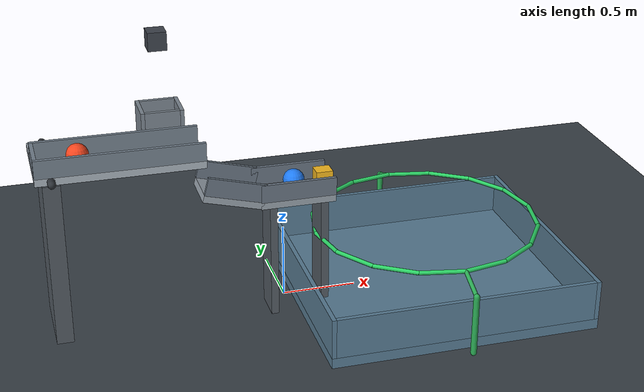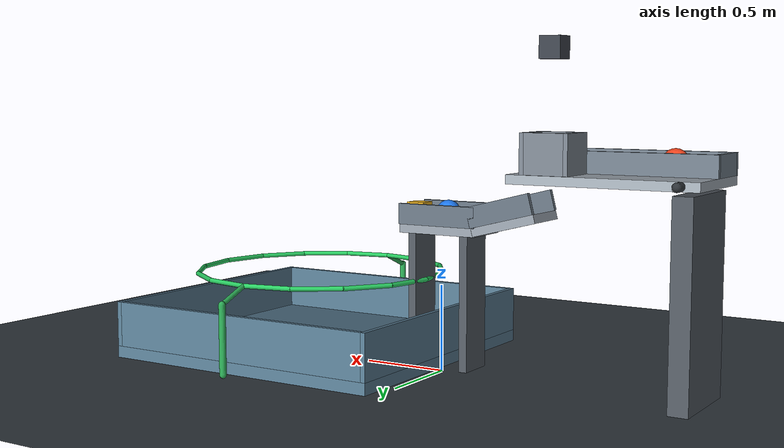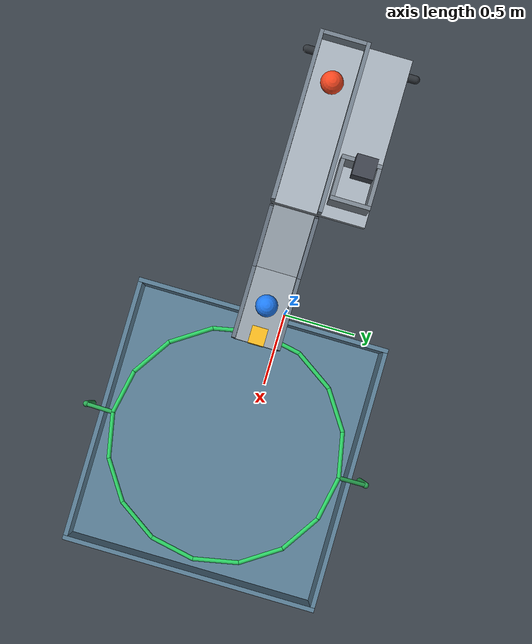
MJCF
<mujoco model="weight_tray_ball_relay">
  <compiler angle="radian" autolimits="true"/>
  <option timestep="0.002" gravity="0 0 -9.81" integrator="implicitfast" cone="elliptic" iterations="100"/>
  <size njmax="2000" nconmax="400"/>
  <visual>
    <global azimuth="125" elevation="-24"/>
    <headlight ambient="0.35 0.35 0.35" diffuse="0.7 0.7 0.7"/>
  </visual>

  <worldbody>
    <light name="main_light" pos="-1 -2 5" dir="0.2 0.3 -1"/>
    <camera name="overview" pos="2.8 -4.4 3.0" xyaxes="0.82 0.57 0 -0.27 0.39 0.88"/>
    <geom name="floor" type="plane" size="5 5 0.1" rgba="0.22 0.25 0.28 1" friction="0.8 0.02 0.01" condim="6"/>

    <body name="tray_stand" pos="-1.5 0 0">
      <geom name="tray_stand_post" type="box" pos="0 0 0.55" size="0.055 0.25 0.55" rgba="0.32 0.35 0.38 1" contype="0" conaffinity="0"/>
      <geom name="tray_stand_axle" type="capsule" fromto="0 -0.34 1.15 0 0.34 1.15" size="0.025" rgba="0.18 0.20 0.22 1" contype="0" conaffinity="0"/>
    </body>

    <!-- Positive hinge rotation lowers the outlet. The loaded tray remains at its 0.25-radian lower stop. -->
    <body name="tray" pos="-1.5 0 1.15">
      <joint name="tray_hinge" type="hinge" axis="0 1 0" range="0 0.25" stiffness="4" springref="-0.75" damping="0.35" armature="0.01" solreflimit="0.006 1" solimplimit="0.95 0.99 0.001"/>
      <geom name="tray_bottom" type="box" pos="0.425 0 0" size="0.525 0.29 0.025" mass="0.18" rgba="0.65 0.69 0.73 1" friction="0.5 0.005 0.001" condim="6"/>
      <geom name="tray_ball_outer_rail" type="box" pos="0.425 -0.2825 0.085" size="0.525 0.0125 0.06" mass="0.015" rgba="0.45 0.50 0.55 1" friction="0.3 0.005 0.001" condim="6"/>
      <geom name="tray_lane_divider" type="box" pos="0.425 0.005 0.085" size="0.525 0.0125 0.06" mass="0.015" rgba="0.45 0.50 0.55 1" friction="0.3 0.005 0.001" condim="6"/>
      <geom name="tray_back_rail" type="box" pos="-0.0875 -0.14 0.085" size="0.0125 0.1325 0.06" mass="0.01" rgba="0.45 0.50 0.55 1"/>
      <geom name="tray_weight_pocket_left" type="box" pos="0.615 0.155 0.135" size="0.0125 0.1225 0.11" mass="0.01" rgba="0.48 0.52 0.56 1" friction="0.6 0.01 0.002"/>
      <geom name="tray_weight_pocket_right" type="box" pos="0.865 0.155 0.135" size="0.0125 0.1225 0.11" mass="0.01" rgba="0.48 0.52 0.56 1" friction="0.6 0.01 0.002"/>
      <geom name="tray_weight_pocket_front" type="box" pos="0.74 0.045 0.135" size="0.1125 0.0125 0.11" mass="0.01" rgba="0.48 0.52 0.56 1" friction="0.6 0.01 0.002"/>
      <geom name="tray_weight_pocket_back" type="box" pos="0.74 0.265 0.135" size="0.1125 0.0125 0.11" mass="0.01" rgba="0.48 0.52 0.56 1" friction="0.6 0.01 0.002"/>
    </body>

    <!-- The weight's bottom starts exactly 0.600 m above the level tray surface. -->
    <body name="weight" pos="-0.76 0.155 1.835">
      <freejoint/>
      <geom name="weight_cube" type="box" size="0.06 0.06 0.06" mass="1.5" rgba="0.24 0.26 0.30 1" friction="0.7 0.02 0.005" condim="6" solref="0.012 1" solimp="0.95 0.99 0.001"/>
    </body>

    <body name="ball1" pos="-1.32 -0.14 1.245">
      <freejoint/>
      <geom name="ball1_sphere" type="sphere" size="0.07" mass="0.4" rgba="0.95 0.27 0.12 1" friction="0.5 0.015 0.004" condim="6" solref="0.008 1" solimp="0.95 0.99 0.001"/>
    </body>

    <body name="ball2" pos="0.04 -0.14 0.91">
      <freejoint/>
      <geom name="ball2_sphere" type="sphere" size="0.07" mass="0.3" rgba="0.12 0.48 0.95 1" friction="0.5 0.015 0.005" condim="6" solref="0.008 1" solimp="0.95 0.99 0.001"/>
    </body>

    <body name="block" pos="0.235 -0.14 0.90">
      <freejoint/>
      <geom name="block_payload" type="box" size="0.055 0.05 0.06" mass="0.09" rgba="0.96 0.72 0.12 1" friction="0.16 0.008 0.002" condim="6" solref="0.01 1" solimp="0.95 0.99 0.001"/>
    </body>

    <!-- This ramp meets the tray when the tray reaches its lower stop. -->
    <body name="ramp" pos="-0.386 -0.14 0.86552" euler="0 0.25 0">
      <geom name="ramp_surface" type="box" size="0.20 0.145 0.025" rgba="0.58 0.62 0.66 1" friction="0.35 0.005 0.001" condim="6"/>
      <geom name="ramp_left_rail" type="box" pos="0 -0.1425 0.085" size="0.20 0.0125 0.06" rgba="0.40 0.45 0.50 1" friction="0.3 0.005 0.001" condim="6"/>
      <geom name="ramp_right_rail" type="box" pos="0 0.1425 0.085" size="0.20 0.0125 0.06" rgba="0.40 0.45 0.50 1" friction="0.3 0.005 0.001" condim="6"/>
    </body>

    <body name="launch_shelf" pos="0 0 0">
      <geom name="launch_shelf_surface" type="box" pos="0.0375 -0.14 0.815" size="0.2475 0.145 0.025" rgba="0.58 0.62 0.66 1" friction="0.12 0.005 0.001" condim="6"/>
      <geom name="launch_shelf_left_rail" type="box" pos="0.0375 -0.2825 0.90" size="0.2475 0.0125 0.06" rgba="0.40 0.45 0.50 1" friction="0.3 0.005 0.001" condim="6"/>
      <geom name="launch_shelf_right_rail" type="box" pos="0.0375 0.0025 0.90" size="0.2475 0.0125 0.06" rgba="0.40 0.45 0.50 1" friction="0.3 0.005 0.001" condim="6"/>
      <geom name="launch_shelf_support_left" type="box" pos="-0.12 -0.14 0.395" size="0.025 0.11 0.395" rgba="0.32 0.35 0.38 1"/>
      <geom name="launch_shelf_support_right" type="box" pos="0.22 -0.14 0.395" size="0.025 0.11 0.395" rgba="0.32 0.35 0.38 1"/>
    </body>

    <!-- Horizontal drop hoop: a closed ring made entirely from capsule primitives. -->
    <body name="hoop" pos="0.95 -0.14 0.50">
      <geom name="hoop_segment_01" type="capsule" fromto="0.76 0 0 0.702148 0.290839 0" size="0.014" rgba="0.16 0.80 0.38 1"/>
      <geom name="hoop_segment_02" type="capsule" fromto="0.702148 0.290839 0 0.537401 0.537401 0" size="0.014" rgba="0.16 0.80 0.38 1"/>
      <geom name="hoop_segment_03" type="capsule" fromto="0.537401 0.537401 0 0.290839 0.702148 0" size="0.014" rgba="0.16 0.80 0.38 1"/>
      <geom name="hoop_segment_04" type="capsule" fromto="0.290839 0.702148 0 0 0.76 0" size="0.014" rgba="0.16 0.80 0.38 1"/>
      <geom name="hoop_segment_05" type="capsule" fromto="0 0.76 0 -0.290839 0.702148 0" size="0.014" rgba="0.16 0.80 0.38 1"/>
      <geom name="hoop_segment_06" type="capsule" fromto="-0.290839 0.702148 0 -0.537401 0.537401 0" size="0.014" rgba="0.16 0.80 0.38 1"/>
      <geom name="hoop_segment_07" type="capsule" fromto="-0.537401 0.537401 0 -0.702148 0.290839 0" size="0.014" rgba="0.16 0.80 0.38 1"/>
      <geom name="hoop_segment_08" type="capsule" fromto="-0.702148 0.290839 0 -0.76 0 0" size="0.014" rgba="0.16 0.80 0.38 1"/>
      <geom name="hoop_segment_09" type="capsule" fromto="-0.76 0 0 -0.702148 -0.290839 0" size="0.014" rgba="0.16 0.80 0.38 1"/>
      <geom name="hoop_segment_10" type="capsule" fromto="-0.702148 -0.290839 0 -0.537401 -0.537401 0" size="0.014" rgba="0.16 0.80 0.38 1"/>
      <geom name="hoop_segment_11" type="capsule" fromto="-0.537401 -0.537401 0 -0.290839 -0.702148 0" size="0.014" rgba="0.16 0.80 0.38 1"/>
      <geom name="hoop_segment_12" type="capsule" fromto="-0.290839 -0.702148 0 0 -0.76 0" size="0.014" rgba="0.16 0.80 0.38 1"/>
      <geom name="hoop_segment_13" type="capsule" fromto="0 -0.76 0 0.290839 -0.702148 0" size="0.014" rgba="0.16 0.80 0.38 1"/>
      <geom name="hoop_segment_14" type="capsule" fromto="0.290839 -0.702148 0 0.537401 -0.537401 0" size="0.014" rgba="0.16 0.80 0.38 1"/>
      <geom name="hoop_segment_15" type="capsule" fromto="0.537401 -0.537401 0 0.702148 -0.290839 0" size="0.014" rgba="0.16 0.80 0.38 1"/>
      <geom name="hoop_segment_16" type="capsule" fromto="0.702148 -0.290839 0 0.76 0 0" size="0.014" rgba="0.16 0.80 0.38 1"/>
      <geom name="hoop_support_front" type="capsule" fromto="0 -0.76 0 0 -0.95 -0.08" size="0.014" rgba="0.16 0.65 0.32 1"/>
      <geom name="hoop_support_back" type="capsule" fromto="0 0.76 0 0 0.95 -0.08" size="0.014" rgba="0.16 0.65 0.32 1"/>
      <geom name="hoop_leg_front" type="capsule" fromto="0 -0.95 -0.48 0 -0.95 -0.08" size="0.02" rgba="0.16 0.65 0.32 1"/>
      <geom name="hoop_leg_back" type="capsule" fromto="0 0.95 -0.48 0 0.95 -0.08" size="0.02" rgba="0.16 0.65 0.32 1"/>
    </body>

    <body name="bin" pos="0.95 -0.14 0">
      <geom name="bin_bottom" type="box" pos="0 0 0.035" size="0.90 0.86 0.035" rgba="0.34 0.48 0.57 1" friction="0.8 0.03 0.012" condim="6" solref="0.012 1"/>
      <geom name="bin_left_wall" type="box" pos="-0.885 0 0.205" size="0.015 0.86 0.135" rgba="0.34 0.48 0.57 1" friction="0.8 0.03 0.012" condim="6"/>
      <geom name="bin_right_wall" type="box" pos="0.885 0 0.205" size="0.015 0.86 0.135" rgba="0.34 0.48 0.57 1" friction="0.8 0.03 0.012" condim="6"/>
      <geom name="bin_front_wall" type="box" pos="0 -0.845 0.205" size="0.87 0.015 0.135" rgba="0.34 0.48 0.57 1" friction="0.8 0.03 0.012" condim="6"/>
      <geom name="bin_back_wall" type="box" pos="0 0.845 0.205" size="0.87 0.015 0.135" rgba="0.34 0.48 0.57 1" friction="0.8 0.03 0.012" condim="6"/>
    </body>
  </worldbody>

  <contact>
    <exclude body1="tray" body2="ramp"/>
  </contact>

  <keyframe>
    <key name="start" qpos="0 -0.76 0.155 1.835 1 0 0 0 -1.32 -0.14 1.245 1 0 0 0 0.04 -0.14 0.91 1 0 0 0 0.235 -0.14 0.90 1 0 0 0"/>
  </keyframe>
</mujoco>
